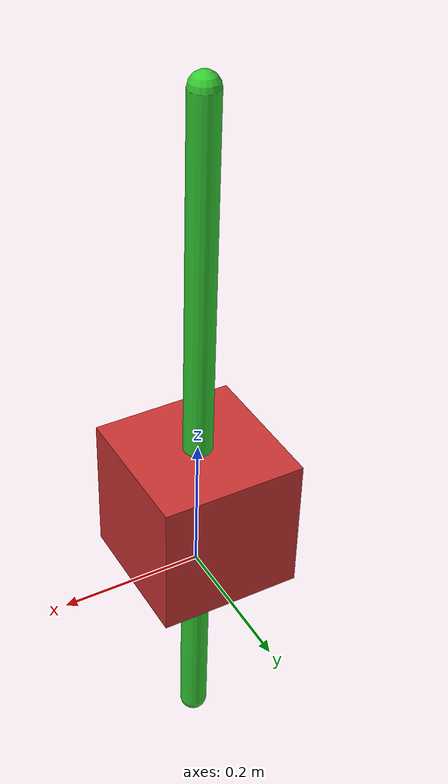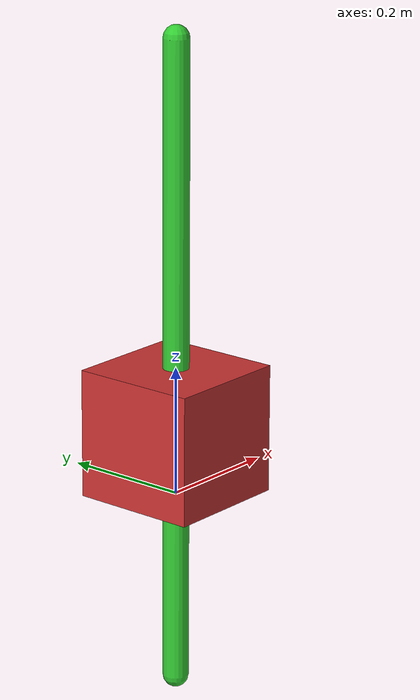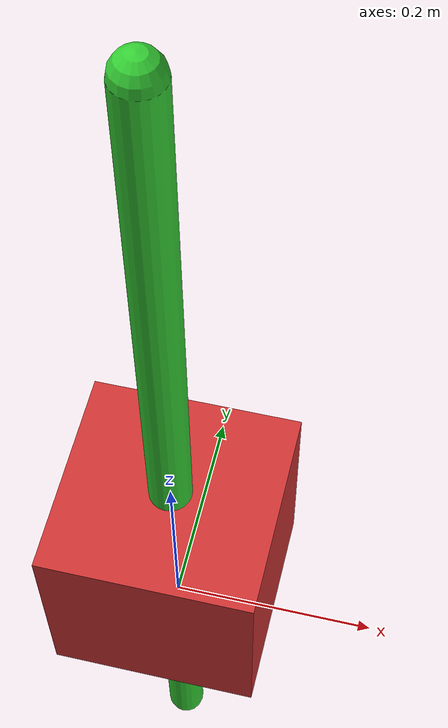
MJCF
<mujoco>
    <worldbody>
        <body name="cart" pos="0 0 0.1">
            <joint name="slider" type="slide" axis="1 0 0"/>
            <geom name="cart" type="box" size="0.1 0.1 0.1" rgba="0.8 0.2 0.2 1"/>
            <body name="pole" pos="0 0 0.1">
                <joint name="hinge" type="hinge" axis="0 1 0"/>
                <geom name="pole" type="capsule" size="0.02 0.5" rgba="0.2 0.8 0.2 1"/>
            </body>
        </body>
    </worldbody>
</mujoco>
